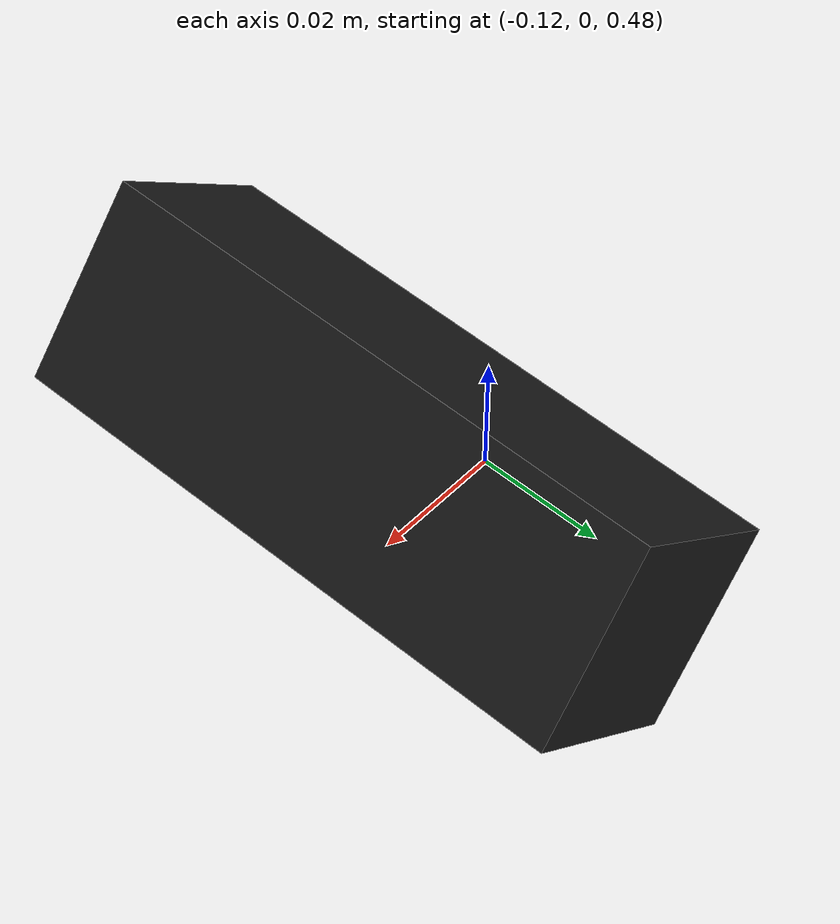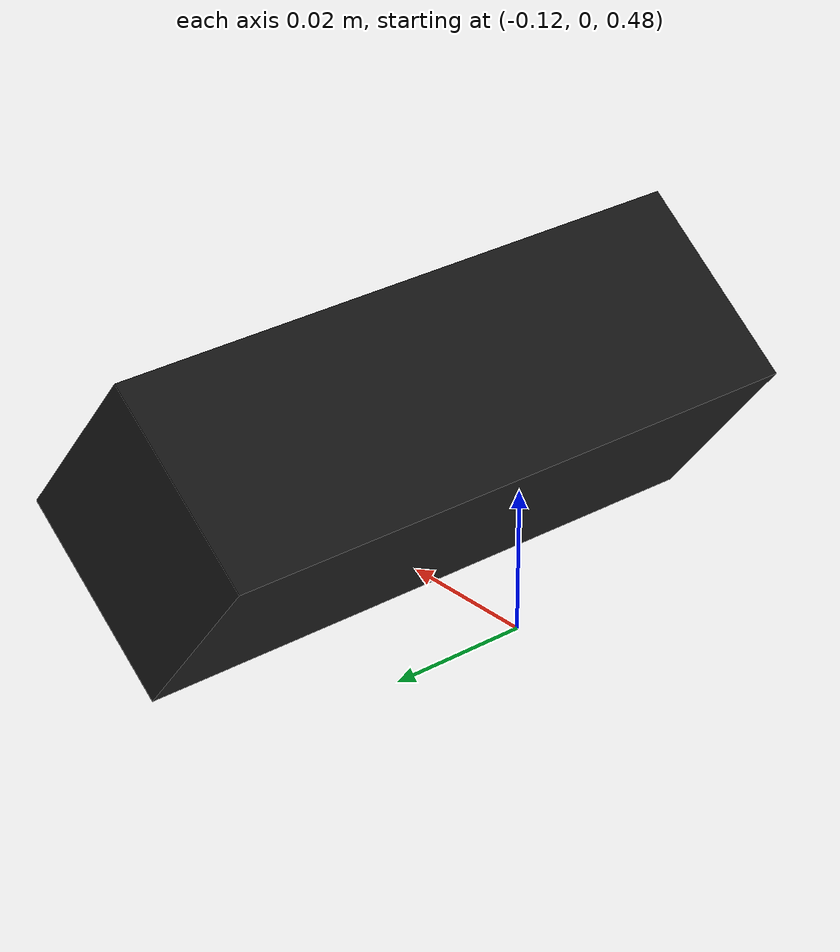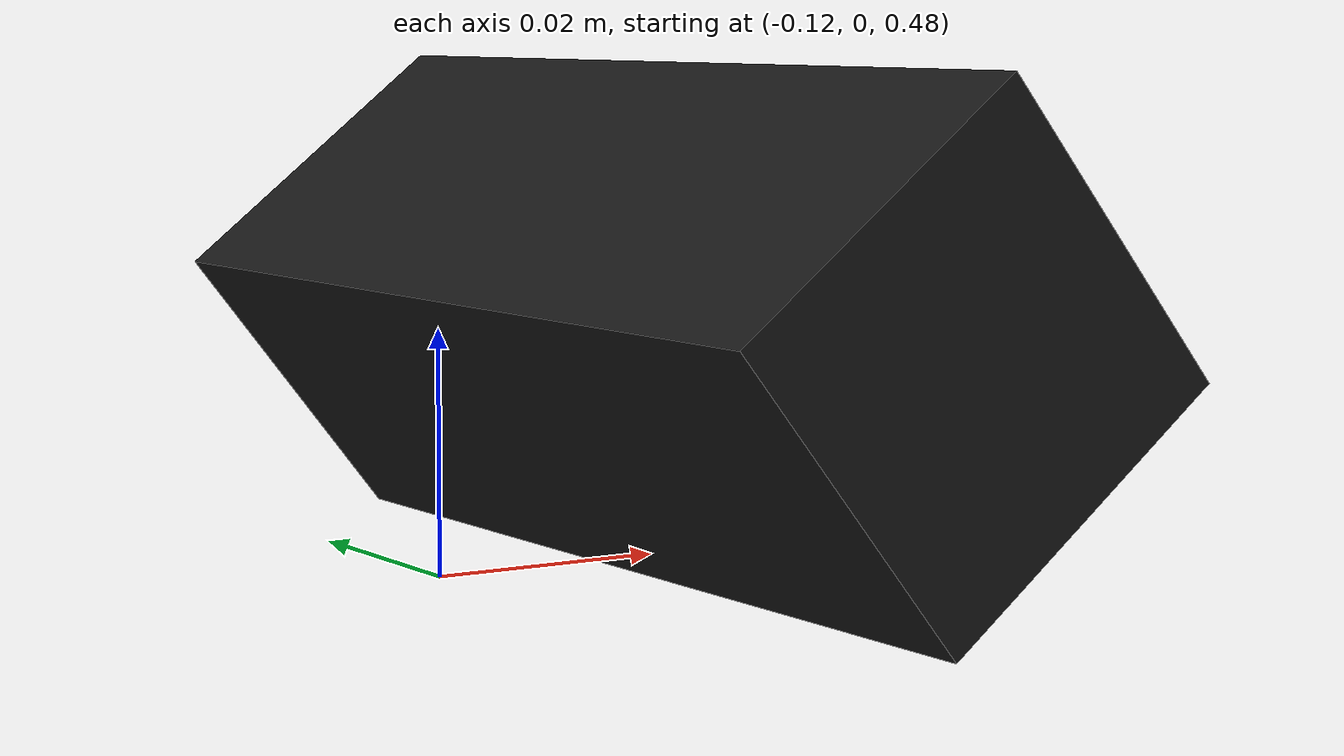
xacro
<?xml version="1.0"?>
<!-- 고정(eye-to-hand) RGB 카메라. 삼각대에 올린 것처럼 world에 붙박이로 고정한다.
     팔 URDF(벤더)는 건드리지 않고, 이 파일을 가제보에 따로 spawn해서 같은 world에 얹는다.
     실물로 갈 때(M6)는 이 origin 값이 곧 삼각대 캘리브레이션 값이 된다. -->
<robot name="fixed_camera" xmlns:xacro="http://www.ros.org/wiki/xacro">

  <link name="world"/>

  <!-- ① 카메라 몸체(링크) : 가제보에서 눈에 보이는 작은 검은 상자.
         TF 트리에 camera_link 프레임이 생긴다 -> 나중에 "카메라->base" 변환의 출발점. -->
  <link name="camera_link">
    <visual>
      <geometry>
        <box size="0.03 0.09 0.03"/>   <!-- 폭3 x 길이9 x 높이3 cm, 그냥 표식용 -->
      </geometry>
      <material name="camera_black">
        <color rgba="0.1 0.1 0.1 1"/>
      </material>
    </visual>
    <!-- 관성(inertial) : gz-sim은 fixed 조인트로 world에 붙은 링크가 관성이 없으면
         world에 흡수해 버려 "모델에 링크가 없다"는 에러를 낸다(벤더 팔의 link0엔 관성이 있어 OK).
         고정 카메라라 물리적으로 안 움직이므로 값은 형식적(작은 상자 근사). -->
    <inertial>
      <mass value="0.1"/>
      <origin xyz="0 0 0" rpy="0 0 0"/>
      <inertia ixx="0.0001" ixy="0.0" ixz="0.0" iyy="0.0001" iyz="0.0" izz="0.0001"/>
    </inertial>
  </link>

  <joint name="camera_joint" type="fixed">
    <parent link="world"/>
    <child link="camera_link"/>
    <origin xyz="-0.10 0.0 0.50" rpy="0 0.9 0"/>
  </joint>

  <!-- ③ 가제보 센서 플러그인 : 위 링크를 "진짜 RGB 카메라"로 만든다.
         이게 없으면 그냥 검은 상자일 뿐. 이 블록이 image_raw를 렌더링해 뱉게 한다. -->
  <gazebo reference="camera_link">
    <sensor name="fixed_camera" type="camera">
      <camera>
        <horizontal_fov>1.047</horizontal_fov>   <!-- 시야각 60도(=1.047 rad) -->
        <image>
          <width>640</width>
          <height>480</height>
          <format>R8G8B8</format>                <!-- RGB 8bit. 뎁스 아님(RGB 단안 확정) -->
        </image>
        <clip>
          <near>0.05</near>                       <!-- 5cm보다 가까운 건 안 보임 -->
          <far>3.0</far>                          <!-- 3m보다 먼 건 안 보임 -->
        </clip>
      </camera>
      <always_on>1</always_on>                    <!-- 항상 켜짐 -->
      <update_rate>24</update_rate>               <!-- 초당 24장 -->
      <topic>camera/image_raw</topic>             <!-- 이미지가 나올 (gz)토픽 이름 -->
    </sensor>
  </gazebo>

</robot>
